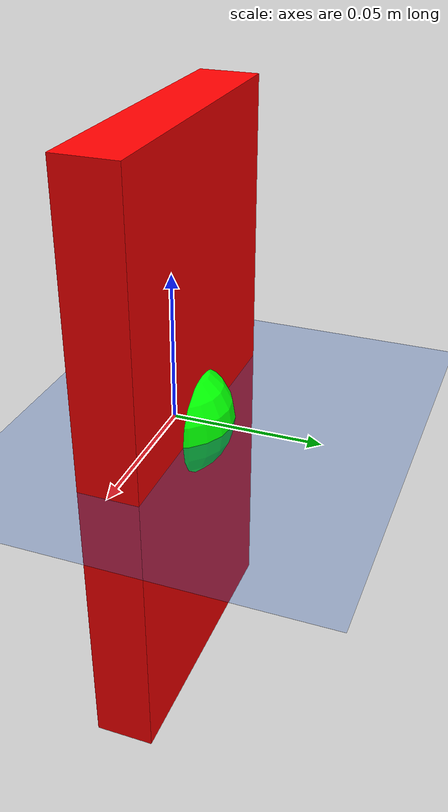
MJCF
<mujoco model="Free-Floating Fingers">
  <include file="../common.xml"/>

  <option timestep="0.001" cone="elliptic" noslip_iterations="5" integrator="implicit"/>
  <size memory="1M"/>

  <custom>
    <numeric name="agent_planner" data="2"/>
    <numeric name="agent_horizon" data="0.5" />
    <numeric name="agent_integrator" data="2" />
    <numeric name="agent_timestep" data="0.005" />
    <numeric name="agent_policy_width" data="0.0035" />
    <numeric name="sampling_trajectories" data="60"/>
    <numeric name="sampling_spline_points" data="5" />
    <numeric name="sampling_exploration" data="0.04" />
    <numeric name="robust_xfrc" data="0.015" />
    <numeric name="gradient_spline_points" data="6" />
  </custom>

  <keyframe>
    <key name="home" qpos="
    0 0 0.3
    1 0 0 0
    0 0 0.12
    1 0 1 0
    0 0.1 0.3
    0 -0.1 0.3
    "
    act="
    0 0.1 0.3
    0 -0.1 0.3
    "
    />
  </keyframe>

  <statistic extent="0.7" center="0 0 0"/>

  <visual>
    <quality shadowsize="8192"/>
    <global azimuth="90" elevation="-30"/>
  </visual>

  <default>
    <default class="red_rgb_object/">
      <default class="red_rgb_object/visual">
        <geom contype="0" conaffinity="0" group="1" rgba="1 0 0 1" mass="0.001"/>
      </default>
      <default class="red_rgb_object/collision">
        <geom contype="1" conaffinity="1" condim="6" friction="0.2 0.005 0.0001" mass="0.2" solref="0.004 1"/>
      </default>
    </default>
  </default>

  <worldbody>
    <site name="world" group="5"/>
    <light pos="0   -1 1.5" dir=".5 .8 -1" diffuse="0.5 0.5 0.5" specular="0.3 0.3 0.3" castshadow="true" cutoff="30"/>
    <light pos="1.2 -1 1.5" dir="-.5 .8 -1" diffuse="0.5 0.5 0.5" specular="0.3 0.3 0.3" castshadow="true" cutoff="30"/>
    <geom name="floor" pos="0 0 0" size="0 0 0.05" type="plane" material="blue_grid"/>
    <body name="object">
      <freejoint name="red_rgb_object/"/>
      <geom name="object" class="red_rgb_object/collision" rgba="1 0 0 1" type="box" size="0.05 0.01 0.1" pos="0 0 0"/>
      <site name="0" pos="0.12 0 0" group="5"/>
      <site name="1" pos="0 .08 0" group="5"/>
      <site name="2" pos="0 0 0.08" group="5"/>
    </body>
    <body name="target" gravcomp="1">
      <freejoint/>
      <geom name="target" rgba=".5 .5 .7 1" type="box" size="0.039 0.008 0.09" contype="0" conaffinity="0"/>
      <site name="0t" pos="0.12 0 0" group="5"/>
      <site name="1t" pos="0 0.08 0" group="5"/>
      <site name="2t" pos="0 0 0.08" group="5"/>
    </body>
    <body name="finger_a" gravcomp="1">
      <joint type="slide" name="A_x" axis="1 0 0"/>
      <joint type="slide" name="A_y" axis="0 1 0"/>
      <joint type="slide" name="A_z" axis="0 0 1"/>
      <geom name="finger_a" rgba="0 1 0 1" type="sphere" size="0.02" condim="6"/>
      <site name="finger_a"/>
    </body>
    <body name="finger_b" gravcomp="1">
      <joint type="slide" name="B_x" axis="1 0 0"/>
      <joint type="slide" name="B_y" axis="0 1 0"/>
      <joint type="slide" name="B_z" axis="0 0 1"/>
      <geom name="finger_b" rgba="0 0 1 1" type="sphere" size="0.02" condim="6"/>
      <site name="finger_b"/>
    </body>
  </worldbody>

  <contact>
    <exclude body1="object" body2="target"/>
  </contact>

  <actuator>
    <intvelocity name="A_x" site="finger_a" refsite="world" actrange="-1 1" ctrlrange="-.99 .99" ctrllimited="true" kp="1000" gear="1 0 0 0 0 0"/>
    <intvelocity name="A_y" site="finger_a" refsite="world" actrange="-1 1" ctrlrange="-.99 .99" ctrllimited="true" kp="1000" gear="0 1 0 0 0 0"/>
    <intvelocity name="A_z" site="finger_a" refsite="world" actrange="0 1.4" ctrlrange="-.99 .99" ctrllimited="true" kp="1000" gear="0 0 1 0 0 0"/>
    <intvelocity name="B_x" site="finger_b" refsite="world" actrange="-1 1" ctrlrange="-.99 .99" ctrllimited="true" kp="1000" gear="1 0 0 0 0 0"/>
    <intvelocity name="B_y" site="finger_b" refsite="world" actrange="-1 1" ctrlrange="-.99 .99" ctrllimited="true" kp="1000" gear="0 1 0 0 0 0"/>
    <intvelocity name="B_z" site="finger_b" refsite="world" actrange="0 1.4" ctrlrange="-.99 .99" ctrllimited="true" kp="1000" gear="0 0 1 0 0 0"/>
  </actuator>
  <sensor>
    <user name="Reach" dim="6" user="2 0.35 0 1 0.02"/>
    <user name="Bring" dim="3" user="6 1 0 5 0.05"/>
    <user name="Control" dim="6" user="6 .05 0 1 0.01"/>
    <framepos name="finger_a" objtype="body" objname="finger_a"/>
    <framepos name="finger_b" objtype="body" objname="finger_b"/>
    <framepos name="object" objtype="body" objname="object"/>
    <framepos name="0" objtype="site" objname="0"/>
    <framepos name="1" objtype="site" objname="1"/>
    <framepos name="2" objtype="site" objname="2"/>
    <framepos name="0t" objtype="site" objname="0t"/>
    <framepos name="1t" objtype="site" objname="1t"/>
    <framepos name="2t" objtype="site" objname="2t"/>
  </sensor>
</mujoco>

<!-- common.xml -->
<mujoco>

  <visual>
    <headlight ambient=".4 .4 .4" diffuse=".8 .8 .8" specular="0.1 0.1 0.1"/>
    <map znear=".01"/>
    <quality shadowsize="2048"/>
    <global elevation="-15"/>
  </visual>

  <asset>
    <texture name="blue_grid" type="2d" builtin="checker" rgb1=".02 .14 .44" rgb2=".27 .55 1" width="300" height="300" mark="edge" markrgb="1 1 1"/>
    <material name="blue_grid" texture="blue_grid" texrepeat="1 1" texuniform="true" reflectance=".2"/>

    <texture name="grey_grid" type="2d" builtin="checker" rgb1=".26 .26 .26" rgb2=".6 .6 .6" width="300" height="300" mark="edge" markrgb="1 1 1"/>
    <material name="grey_grid" texture="grey_grid" texrepeat="1 1" texuniform="true" reflectance=".2"/>
    <texture name="skybox" type="skybox" builtin="gradient" rgb1=".66 .79 1" rgb2=".9 .91 .93" width="800" height="800"/>

    <material name="self" rgba=".7 .5 .3 1"/>
    <material name="self_default" rgba=".7 .5 .3 1"/>
    <material name="self_highlight" rgba="0 .5 .3 1"/>
    <material name="effector" rgba=".7 .4 .2 1"/>
    <material name="effector_default" rgba=".7 .4 .2 1"/>
    <material name="effector_highlight" rgba="0 .5 .3 1"/>
    <material name="decoration" rgba=".2 .6 .3 1"/>
    <material name="eye" rgba="0 .2 1 1"/>
    <material name="target" rgba=".6 .3 .3 1"/>
    <material name="target_default" rgba=".6 .3 .3 1"/>
    <material name="target_highlight" rgba=".6 .3 .3 .4"/>
    <material name="site" rgba=".5 .5 .5 .3"/>
  </asset>
</mujoco>
